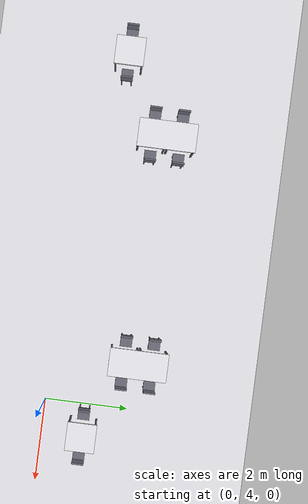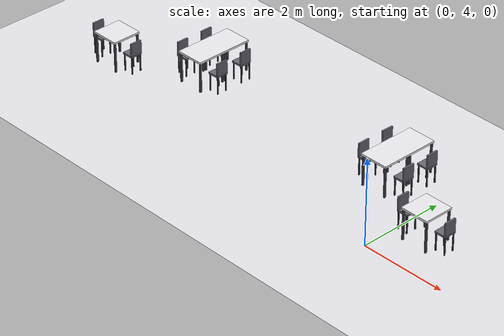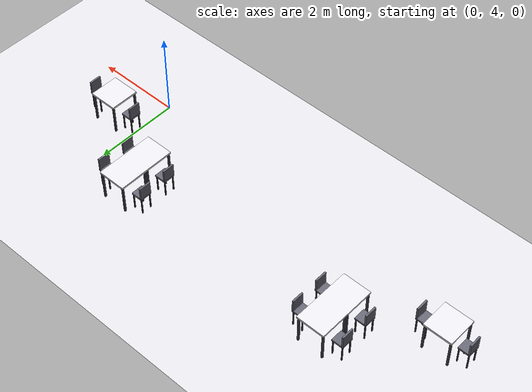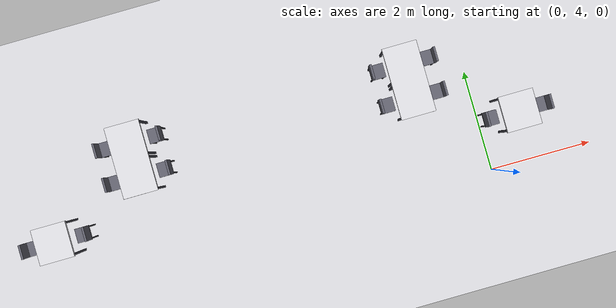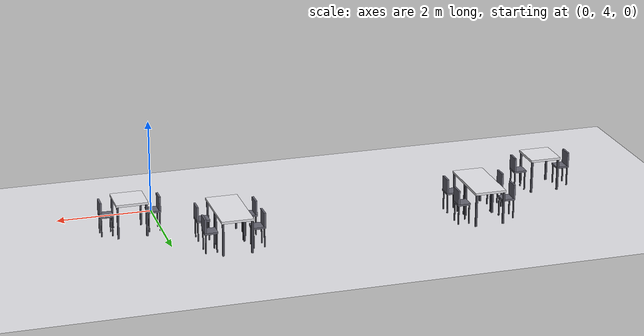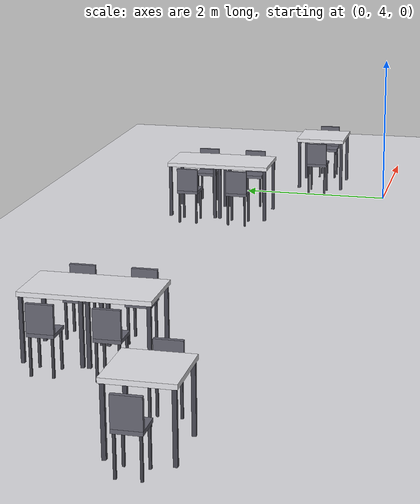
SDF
<sdf version="1.8">
 <world name="restaurant_blueprint_world">
  <model name="ground_plane">
   <static>true</static>
   <link name="link">
    <collision name="collision">
     <geometry><plane><normal>0 0 1</normal><size>120 120</size></plane></geometry>
    </collision>
    <visual name="visual">
     <geometry><plane><normal>0 0 1</normal><size>120 120</size></plane></geometry>
     <material>
      <ambient>0.88 0.88 0.90 1</ambient>
      <diffuse>0.88 0.88 0.90 1</diffuse>
      <specular>0.1 0.1 0.1 1</specular>
     </material>
    </visual>
   </link>
  </model>
  <model name="restaurant_boundary">
   <static>true</static>
   <link name="north_wall_dining">
    <visual name="single_table_nw_vis">
     <pose>-8.445 4.985 0.725 0.0000 0.0000 0.0000</pose>
     <geometry><box><size>0.67 0.69 0.05</size></box></geometry>
     <material><ambient>0.85 0.85 0.88 1</ambient><diffuse>0.90 0.90 0.92 1</diffuse></material>
    </visual>
    <visual name="single_table_nw_leg_1_vis">
     <pose>-8.145 5.295 0.350 0 0 0.0000</pose>
     <geometry><box><size>0.04 0.04 0.70</size></box></geometry>
     <material><ambient>0.22 0.22 0.25 1</ambient><diffuse>0.28 0.28 0.32 1</diffuse></material>
    </visual>
    <visual name="single_table_nw_leg_2_vis">
     <pose>-8.745 5.295 0.350 0 0 0.0000</pose>
     <geometry><box><size>0.04 0.04 0.70</size></box></geometry>
     <material><ambient>0.22 0.22 0.25 1</ambient><diffuse>0.28 0.28 0.32 1</diffuse></material>
    </visual>
    <visual name="single_table_nw_leg_3_vis">
     <pose>-8.145 4.675 0.350 0 0 0.0000</pose>
     <geometry><box><size>0.04 0.04 0.70</size></box></geometry>
     <material><ambient>0.22 0.22 0.25 1</ambient><diffuse>0.28 0.28 0.32 1</diffuse></material>
    </visual>
    <visual name="single_table_nw_leg_4_vis">
     <pose>-8.745 4.675 0.350 0 0 0.0000</pose>
     <geometry><box><size>0.04 0.04 0.70</size></box></geometry>
     <material><ambient>0.22 0.22 0.25 1</ambient><diffuse>0.28 0.28 0.32 1</diffuse></material>
    </visual>
    <collision name="single_table_nw_col">
     <pose>-8.445 4.985 0.725 0.0000 0.0000 0.0000</pose>
     <geometry><box><size>0.67 0.69 0.05</size></box></geometry>
    </collision>
    <collision name="single_table_nw_leg_1_col">
     <pose>-8.145 5.295 0.350 0 0 0.0000</pose>
     <geometry><box><size>0.04 0.04 0.70</size></box></geometry>
    </collision>
    <collision name="single_table_nw_leg_2_col">
     <pose>-8.745 5.295 0.350 0 0 0.0000</pose>
     <geometry><box><size>0.04 0.04 0.70</size></box></geometry>
    </collision>
    <collision name="single_table_nw_leg_3_col">
     <pose>-8.145 4.675 0.350 0 0 0.0000</pose>
     <geometry><box><size>0.04 0.04 0.70</size></box></geometry>
    </collision>
    <collision name="single_table_nw_leg_4_col">
     <pose>-8.745 4.675 0.350 0 0 0.0000</pose>
     <geometry><box><size>0.04 0.04 0.70</size></box></geometry>
    </collision>
    <visual name="single_chair_nw_w_seat_vis">
     <pose>-8.941 4.985 0.430 0.0000 0.0000 0.0000</pose>
     <geometry><box><size>0.28 0.28 0.04</size></box></geometry>
     <material><ambient>0.30 0.30 0.33 1</ambient><diffuse>0.40 0.40 0.45 1</diffuse></material>
    </visual>
    <visual name="single_chair_nw_w_back_vis">
     <pose>-9.061 4.985 0.600 0 0 0.0000</pose>
     <geometry><box><size>0.04 0.28 0.30</size></box></geometry>
     <material><ambient>0.30 0.30 0.33 1</ambient><diffuse>0.40 0.40 0.45 1</diffuse></material>
    </visual>
    <visual name="single_chair_nw_w_leg_1_vis">
     <pose>-8.826 5.100 0.205 0 0 0.0000</pose>
     <geometry><box><size>0.025 0.025 0.41</size></box></geometry>
     <material><ambient>0.20 0.20 0.22 1</ambient><diffuse>0.25 0.25 0.28 1</diffuse></material>
    </visual>
    <visual name="single_chair_nw_w_leg_2_vis">
     <pose>-9.056 5.100 0.205 0 0 0.0000</pose>
     <geometry><box><size>0.025 0.025 0.41</size></box></geometry>
     <material><ambient>0.20 0.20 0.22 1</ambient><diffuse>0.25 0.25 0.28 1</diffuse></material>
    </visual>
    <visual name="single_chair_nw_w_leg_3_vis">
     <pose>-8.826 4.870 0.205 0 0 0.0000</pose>
     <geometry><box><size>0.025 0.025 0.41</size></box></geometry>
     <material><ambient>0.20 0.20 0.22 1</ambient><diffuse>0.25 0.25 0.28 1</diffuse></material>
    </visual>
    <visual name="single_chair_nw_w_leg_4_vis">
     <pose>-9.056 4.870 0.205 0 0 0.0000</pose>
     <geometry><box><size>0.025 0.025 0.41</size></box></geometry>
     <material><ambient>0.20 0.20 0.22 1</ambient><diffuse>0.25 0.25 0.28 1</diffuse></material>
    </visual>
    <collision name="single_chair_nw_w_seat_col">
     <pose>-8.941 4.985 0.430 0.0000 0.0000 0.0000</pose>
     <geometry><box><size>0.28 0.28 0.04</size></box></geometry>
    </collision>
    <collision name="single_chair_nw_w_back_col">
     <pose>-9.061 4.985 0.600 0 0 0.0000</pose>
     <geometry><box><size>0.04 0.28 0.30</size></box></geometry>
    </collision>
    <collision name="single_chair_nw_w_leg_1_col">
     <pose>-8.826 5.100 0.205 0 0 0.0000</pose>
     <geometry><box><size>0.025 0.025 0.41</size></box></geometry>
    </collision>
    <collision name="single_chair_nw_w_leg_2_col">
     <pose>-9.056 5.100 0.205 0 0 0.0000</pose>
     <geometry><box><size>0.025 0.025 0.41</size></box></geometry>
    </collision>
    <collision name="single_chair_nw_w_leg_3_col">
     <pose>-8.826 4.870 0.205 0 0 0.0000</pose>
     <geometry><box><size>0.025 0.025 0.41</size></box></geometry>
    </collision>
    <collision name="single_chair_nw_w_leg_4_col">
     <pose>-9.056 4.870 0.205 0 0 0.0000</pose>
     <geometry><box><size>0.025 0.025 0.41</size></box></geometry>
    </collision>
    <visual name="single_chair_nw_e_seat_vis">
     <pose>-7.949 4.985 0.430 0.0000 0.0000 0.0000</pose>
     <geometry><box><size>0.28 0.28 0.04</size></box></geometry>
     <material><ambient>0.30 0.30 0.33 1</ambient><diffuse>0.40 0.40 0.45 1</diffuse></material>
    </visual>
    <visual name="single_chair_nw_e_back_vis">
     <pose>-7.829 4.985 0.600 0 0 0.0000</pose>
     <geometry><box><size>0.04 0.28 0.30</size></box></geometry>
     <material><ambient>0.30 0.30 0.33 1</ambient><diffuse>0.40 0.40 0.45 1</diffuse></material>
    </visual>
    <visual name="single_chair_nw_e_leg_1_vis">
     <pose>-7.834 5.100 0.205 0 0 0.0000</pose>
     <geometry><box><size>0.025 0.025 0.41</size></box></geometry>
     <material><ambient>0.20 0.20 0.22 1</ambient><diffuse>0.25 0.25 0.28 1</diffuse></material>
    </visual>
    <visual name="single_chair_nw_e_leg_2_vis">
     <pose>-8.064 5.100 0.205 0 0 0.0000</pose>
     <geometry><box><size>0.025 0.025 0.41</size></box></geometry>
     <material><ambient>0.20 0.20 0.22 1</ambient><diffuse>0.25 0.25 0.28 1</diffuse></material>
    </visual>
    <visual name="single_chair_nw_e_leg_3_vis">
     <pose>-7.834 4.870 0.205 0 0 0.0000</pose>
     <geometry><box><size>0.025 0.025 0.41</size></box></geometry>
     <material><ambient>0.20 0.20 0.22 1</ambient><diffuse>0.25 0.25 0.28 1</diffuse></material>
    </visual>
    <visual name="single_chair_nw_e_leg_4_vis">
     <pose>-8.064 4.870 0.205 0 0 0.0000</pose>
     <geometry><box><size>0.025 0.025 0.41</size></box></geometry>
     <material><ambient>0.20 0.20 0.22 1</ambient><diffuse>0.25 0.25 0.28 1</diffuse></material>
    </visual>
    <collision name="single_chair_nw_e_seat_col">
     <pose>-7.949 4.985 0.430 0.0000 0.0000 0.0000</pose>
     <geometry><box><size>0.28 0.28 0.04</size></box></geometry>
    </collision>
    <collision name="single_chair_nw_e_back_col">
     <pose>-7.829 4.985 0.600 0 0 0.0000</pose>
     <geometry><box><size>0.04 0.28 0.30</size></box></geometry>
    </collision>
    <collision name="single_chair_nw_e_leg_1_col">
     <pose>-7.834 5.100 0.205 0 0 0.0000</pose>
     <geometry><box><size>0.025 0.025 0.41</size></box></geometry>
    </collision>
    <collision name="single_chair_nw_e_leg_2_col">
     <pose>-8.064 5.100 0.205 0 0 0.0000</pose>
     <geometry><box><size>0.025 0.025 0.41</size></box></geometry>
    </collision>
    <collision name="single_chair_nw_e_leg_3_col">
     <pose>-7.834 4.870 0.205 0 0 0.0000</pose>
     <geometry><box><size>0.025 0.025 0.41</size></box></geometry>
    </collision>
    <collision name="single_chair_nw_e_leg_4_col">
     <pose>-8.064 4.870 0.205 0 0 0.0000</pose>
     <geometry><box><size>0.025 0.025 0.41</size></box></geometry>
    </collision>
    <visual name="table_nw_east_vis">
     <pose>-6.600 6.100 0.725 0.0000 0.0000 0.0000</pose>
     <geometry><box><size>0.67 1.38 0.05</size></box></geometry>
     <material><ambient>0.85 0.85 0.88 1</ambient><diffuse>0.90 0.90 0.92 1</diffuse></material>
    </visual>
    <visual name="table_nw_east_leg_1_vis">
     <pose>-6.300 6.755 0.350 0 0 0.0000</pose>
     <geometry><box><size>0.04 0.04 0.70</size></box></geometry>
     <material><ambient>0.22 0.22 0.25 1</ambient><diffuse>0.28 0.28 0.32 1</diffuse></material>
    </visual>
    <visual name="table_nw_east_leg_2_vis">
     <pose>-6.900 6.755 0.350 0 0 0.0000</pose>
     <geometry><box><size>0.04 0.04 0.70</size></box></geometry>
     <material><ambient>0.22 0.22 0.25 1</ambient><diffuse>0.28 0.28 0.32 1</diffuse></material>
    </visual>
    <visual name="table_nw_east_leg_3_vis">
     <pose>-6.300 6.135 0.350 0 0 0.0000</pose>
     <geometry><box><size>0.04 0.04 0.70</size></box></geometry>
     <material><ambient>0.22 0.22 0.25 1</ambient><diffuse>0.28 0.28 0.32 1</diffuse></material>
    </visual>
    <visual name="table_nw_east_leg_4_vis">
     <pose>-6.900 6.135 0.350 0 0 0.0000</pose>
     <geometry><box><size>0.04 0.04 0.70</size></box></geometry>
     <material><ambient>0.22 0.22 0.25 1</ambient><diffuse>0.28 0.28 0.32 1</diffuse></material>
    </visual>
    <visual name="table_nw_east_leg_5_vis">
     <pose>-6.300 6.065 0.350 0 0 0.0000</pose>
     <geometry><box><size>0.04 0.04 0.70</size></box></geometry>
     <material><ambient>0.22 0.22 0.25 1</ambient><diffuse>0.28 0.28 0.32 1</diffuse></material>
    </visual>
    <visual name="table_nw_east_leg_6_vis">
     <pose>-6.900 6.065 0.350 0 0 0.0000</pose>
     <geometry><box><size>0.04 0.04 0.70</size></box></geometry>
     <material><ambient>0.22 0.22 0.25 1</ambient><diffuse>0.28 0.28 0.32 1</diffuse></material>
    </visual>
    <visual name="table_nw_east_leg_7_vis">
     <pose>-6.300 5.445 0.350 0 0 0.0000</pose>
     <geometry><box><size>0.04 0.04 0.70</size></box></geometry>
     <material><ambient>0.22 0.22 0.25 1</ambient><diffuse>0.28 0.28 0.32 1</diffuse></material>
    </visual>
    <visual name="table_nw_east_leg_8_vis">
     <pose>-6.900 5.445 0.350 0 0 0.0000</pose>
     <geometry><box><size>0.04 0.04 0.70</size></box></geometry>
     <material><ambient>0.22 0.22 0.25 1</ambient><diffuse>0.28 0.28 0.32 1</diffuse></material>
    </visual>
    <collision name="table_nw_east_col">
     <pose>-6.600 6.100 0.725 0.0000 0.0000 0.0000</pose>
     <geometry><box><size>0.67 1.38 0.05</size></box></geometry>
    </collision>
    <collision name="table_nw_east_leg_1_col">
     <pose>-6.300 6.755 0.350 0 0 0.0000</pose>
     <geometry><box><size>0.04 0.04 0.70</size></box></geometry>
    </collision>
    <collision name="table_nw_east_leg_2_col">
     <pose>-6.900 6.755 0.350 0 0 0.0000</pose>
     <geometry><box><size>0.04 0.04 0.70</size></box></geometry>
    </collision>
    <collision name="table_nw_east_leg_3_col">
     <pose>-6.300 6.135 0.350 0 0 0.0000</pose>
     <geometry><box><size>0.04 0.04 0.70</size></box></geometry>
    </collision>
    <collision name="table_nw_east_leg_4_col">
     <pose>-6.900 6.135 0.350 0 0 0.0000</pose>
     <geometry><box><size>0.04 0.04 0.70</size></box></geometry>
    </collision>
    <collision name="table_nw_east_leg_5_col">
     <pose>-6.300 6.065 0.350 0 0 0.0000</pose>
     <geometry><box><size>0.04 0.04 0.70</size></box></geometry>
    </collision>
    <collision name="table_nw_east_leg_6_col">
     <pose>-6.900 6.065 0.350 0 0 0.0000</pose>
     <geometry><box><size>0.04 0.04 0.70</size></box></geometry>
    </collision>
    <collision name="table_nw_east_leg_7_col">
     <pose>-6.300 5.445 0.350 0 0 0.0000</pose>
     <geometry><box><size>0.04 0.04 0.70</size></box></geometry>
    </collision>
    <collision name="table_nw_east_leg_8_col">
     <pose>-6.900 5.445 0.350 0 0 0.0000</pose>
     <geometry><box><size>0.04 0.04 0.70</size></box></geometry>
    </collision>
    <visual name="chair_nw_east_w1_seat_vis">
     <pose>-7.096 6.435 0.430 0.0000 0.0000 0.0000</pose>
     <geometry><box><size>0.28 0.28 0.04</size></box></geometry>
     <material><ambient>0.30 0.30 0.33 1</ambient><diffuse>0.40 0.40 0.45 1</diffuse></material>
    </visual>
    <visual name="chair_nw_east_w1_back_vis">
     <pose>-7.216 6.435 0.600 0 0 0.0000</pose>
     <geometry><box><size>0.04 0.28 0.30</size></box></geometry>
     <material><ambient>0.30 0.30 0.33 1</ambient><diffuse>0.40 0.40 0.45 1</diffuse></material>
    </visual>
    <visual name="chair_nw_east_w1_leg_1_vis">
     <pose>-6.981 6.550 0.205 0 0 0.0000</pose>
     <geometry><box><size>0.025 0.025 0.41</size></box></geometry>
     <material><ambient>0.20 0.20 0.22 1</ambient><diffuse>0.25 0.25 0.28 1</diffuse></material>
    </visual>
    <visual name="chair_nw_east_w1_leg_2_vis">
     <pose>-7.211 6.550 0.205 0 0 0.0000</pose>
     <geometry><box><size>0.025 0.025 0.41</size></box></geometry>
     <material><ambient>0.20 0.20 0.22 1</ambient><diffuse>0.25 0.25 0.28 1</diffuse></material>
    </visual>
    <visual name="chair_nw_east_w1_leg_3_vis">
     <pose>-6.981 6.320 0.205 0 0 0.0000</pose>
     <geometry><box><size>0.025 0.025 0.41</size></box></geometry>
     <material><ambient>0.20 0.20 0.22 1</ambient><diffuse>0.25 0.25 0.28 1</diffuse></material>
    </visual>
    <visual name="chair_nw_east_w1_leg_4_vis">
     <pose>-7.211 6.320 0.205 0 0 0.0000</pose>
     <geometry><box><size>0.025 0.025 0.41</size></box></geometry>
     <material><ambient>0.20 0.20 0.22 1</ambient><diffuse>0.25 0.25 0.28 1</diffuse></material>
    </visual>
    <collision name="chair_nw_east_w1_seat_col">
     <pose>-7.096 6.435 0.430 0.0000 0.0000 0.0000</pose>
     <geometry><box><size>0.28 0.28 0.04</size></box></geometry>
    </collision>
    <collision name="chair_nw_east_w1_back_col">
     <pose>-7.216 6.435 0.600 0 0 0.0000</pose>
     <geometry><box><size>0.04 0.28 0.30</size></box></geometry>
    </collision>
    <collision name="chair_nw_east_w1_leg_1_col">
     <pose>-6.981 6.550 0.205 0 0 0.0000</pose>
     <geometry><box><size>0.025 0.025 0.41</size></box></geometry>
    </collision>
    <collision name="chair_nw_east_w1_leg_2_col">
     <pose>-7.211 6.550 0.205 0 0 0.0000</pose>
     <geometry><box><size>0.025 0.025 0.41</size></box></geometry>
    </collision>
    <collision name="chair_nw_east_w1_leg_3_col">
     <pose>-6.981 6.320 0.205 0 0 0.0000</pose>
     <geometry><box><size>0.025 0.025 0.41</size></box></geometry>
    </collision>
    <collision name="chair_nw_east_w1_leg_4_col">
     <pose>-7.211 6.320 0.205 0 0 0.0000</pose>
     <geometry><box><size>0.025 0.025 0.41</size></box></geometry>
    </collision>
    <visual name="chair_nw_east_w2_seat_vis">
     <pose>-7.096 5.765 0.430 0.0000 0.0000 0.0000</pose>
     <geometry><box><size>0.28 0.28 0.04</size></box></geometry>
     <material><ambient>0.30 0.30 0.33 1</ambient><diffuse>0.40 0.40 0.45 1</diffuse></material>
    </visual>
    <visual name="chair_nw_east_w2_back_vis">
     <pose>-7.216 5.765 0.600 0 0 0.0000</pose>
     <geometry><box><size>0.04 0.28 0.30</size></box></geometry>
     <material><ambient>0.30 0.30 0.33 1</ambient><diffuse>0.40 0.40 0.45 1</diffuse></material>
    </visual>
    <visual name="chair_nw_east_w2_leg_1_vis">
     <pose>-6.981 5.880 0.205 0 0 0.0000</pose>
     <geometry><box><size>0.025 0.025 0.41</size></box></geometry>
     <material><ambient>0.20 0.20 0.22 1</ambient><diffuse>0.25 0.25 0.28 1</diffuse></material>
    </visual>
    <visual name="chair_nw_east_w2_leg_2_vis">
     <pose>-7.211 5.880 0.205 0 0 0.0000</pose>
     <geometry><box><size>0.025 0.025 0.41</size></box></geometry>
     <material><ambient>0.20 0.20 0.22 1</ambient><diffuse>0.25 0.25 0.28 1</diffuse></material>
    </visual>
    <visual name="chair_nw_east_w2_leg_3_vis">
     <pose>-6.981 5.650 0.205 0 0 0.0000</pose>
     <geometry><box><size>0.025 0.025 0.41</size></box></geometry>
     <material><ambient>0.20 0.20 0.22 1</ambient><diffuse>0.25 0.25 0.28 1</diffuse></material>
    </visual>
    <visual name="chair_nw_east_w2_leg_4_vis">
     <pose>-7.211 5.650 0.205 0 0 0.0000</pose>
     <geometry><box><size>0.025 0.025 0.41</size></box></geometry>
     <material><ambient>0.20 0.20 0.22 1</ambient><diffuse>0.25 0.25 0.28 1</diffuse></material>
    </visual>
    <collision name="chair_nw_east_w2_seat_col">
     <pose>-7.096 5.765 0.430 0.0000 0.0000 0.0000</pose>
     <geometry><box><size>0.28 0.28 0.04</size></box></geometry>
    </collision>
    <collision name="chair_nw_east_w2_back_col">
     <pose>-7.216 5.765 0.600 0 0 0.0000</pose>
     <geometry><box><size>0.04 0.28 0.30</size></box></geometry>
    </collision>
    <collision name="chair_nw_east_w2_leg_1_col">
     <pose>-6.981 5.880 0.205 0 0 0.0000</pose>
     <geometry><box><size>0.025 0.025 0.41</size></box></geometry>
    </collision>
    <collision name="chair_nw_east_w2_leg_2_col">
     <pose>-7.211 5.880 0.205 0 0 0.0000</pose>
     <geometry><box><size>0.025 0.025 0.41</size></box></geometry>
    </collision>
    <collision name="chair_nw_east_w2_leg_3_col">
     <pose>-6.981 5.650 0.205 0 0 0.0000</pose>
     <geometry><box><size>0.025 0.025 0.41</size></box></geometry>
    </collision>
    <collision name="chair_nw_east_w2_leg_4_col">
     <pose>-7.211 5.650 0.205 0 0 0.0000</pose>
     <geometry><box><size>0.025 0.025 0.41</size></box></geometry>
    </collision>
    <visual name="chair_nw_east_e1_seat_vis">
     <pose>-6.104 6.435 0.430 0.0000 0.0000 0.0000</pose>
     <geometry><box><size>0.28 0.28 0.04</size></box></geometry>
     <material><ambient>0.30 0.30 0.33 1</ambient><diffuse>0.40 0.40 0.45 1</diffuse></material>
    </visual>
    <visual name="chair_nw_east_e1_back_vis">
     <pose>-5.984 6.435 0.600 0 0 0.0000</pose>
     <geometry><box><size>0.04 0.28 0.30</size></box></geometry>
     <material><ambient>0.30 0.30 0.33 1</ambient><diffuse>0.40 0.40 0.45 1</diffuse></material>
    </visual>
    <visual name="chair_nw_east_e1_leg_1_vis">
     <pose>-5.989 6.550 0.205 0 0 0.0000</pose>
     <geometry><box><size>0.025 0.025 0.41</size></box></geometry>
     <material><ambient>0.20 0.20 0.22 1</ambient><diffuse>0.25 0.25 0.28 1</diffuse></material>
    </visual>
    <visual name="chair_nw_east_e1_leg_2_vis">
     <pose>-6.219 6.550 0.205 0 0 0.0000</pose>
     <geometry><box><size>0.025 0.025 0.41</size></box></geometry>
     <material><ambient>0.20 0.20 0.22 1</ambient><diffuse>0.25 0.25 0.28 1</diffuse></material>
    </visual>
    <visual name="chair_nw_east_e1_leg_3_vis">
     <pose>-5.989 6.320 0.205 0 0 0.0000</pose>
     <geometry><box><size>0.025 0.025 0.41</size></box></geometry>
     <material><ambient>0.20 0.20 0.22 1</ambient><diffuse>0.25 0.25 0.28 1</diffuse></material>
    </visual>
    <visual name="chair_nw_east_e1_leg_4_vis">
     <pose>-6.219 6.320 0.205 0 0 0.0000</pose>
     <geometry><box><size>0.025 0.025 0.41</size></box></geometry>
     <material><ambient>0.20 0.20 0.22 1</ambient><diffuse>0.25 0.25 0.28 1</diffuse></material>
    </visual>
    <collision name="chair_nw_east_e1_seat_col">
     <pose>-6.104 6.435 0.430 0.0000 0.0000 0.0000</pose>
     <geometry><box><size>0.28 0.28 0.04</size></box></geometry>
    </collision>
    <collision name="chair_nw_east_e1_back_col">
     <pose>-5.984 6.435 0.600 0 0 0.0000</pose>
     <geometry><box><size>0.04 0.28 0.30</size></box></geometry>
    </collision>
    <collision name="chair_nw_east_e1_leg_1_col">
     <pose>-5.989 6.550 0.205 0 0 0.0000</pose>
     <geometry><box><size>0.025 0.025 0.41</size></box></geometry>
    </collision>
    <collision name="chair_nw_east_e1_leg_2_col">
     <pose>-6.219 6.550 0.205 0 0 0.0000</pose>
     <geometry><box><size>0.025 0.025 0.41</size></box></geometry>
    </collision>
    <collision name="chair_nw_east_e1_leg_3_col">
     <pose>-5.989 6.320 0.205 0 0 0.0000</pose>
     <geometry><box><size>0.025 0.025 0.41</size></box></geometry>
    </collision>
    <collision name="chair_nw_east_e1_leg_4_col">
     <pose>-6.219 6.320 0.205 0 0 0.0000</pose>
     <geometry><box><size>0.025 0.025 0.41</size></box></geometry>
    </collision>
    <visual name="chair_nw_east_e2_seat_vis">
     <pose>-6.104 5.765 0.430 0.0000 0.0000 0.0000</pose>
     <geometry><box><size>0.28 0.28 0.04</size></box></geometry>
     <material><ambient>0.30 0.30 0.33 1</ambient><diffuse>0.40 0.40 0.45 1</diffuse></material>
    </visual>
    <visual name="chair_nw_east_e2_back_vis">
     <pose>-5.984 5.765 0.600 0 0 0.0000</pose>
     <geometry><box><size>0.04 0.28 0.30</size></box></geometry>
     <material><ambient>0.30 0.30 0.33 1</ambient><diffuse>0.40 0.40 0.45 1</diffuse></material>
    </visual>
    <visual name="chair_nw_east_e2_leg_1_vis">
     <pose>-5.989 5.880 0.205 0 0 0.0000</pose>
     <geometry><box><size>0.025 0.025 0.41</size></box></geometry>
     <material><ambient>0.20 0.20 0.22 1</ambient><diffuse>0.25 0.25 0.28 1</diffuse></material>
    </visual>
    <visual name="chair_nw_east_e2_leg_2_vis">
     <pose>-6.219 5.880 0.205 0 0 0.0000</pose>
     <geometry><box><size>0.025 0.025 0.41</size></box></geometry>
     <material><ambient>0.20 0.20 0.22 1</ambient><diffuse>0.25 0.25 0.28 1</diffuse></material>
    </visual>
    <visual name="chair_nw_east_e2_leg_3_vis">
     <pose>-5.989 5.650 0.205 0 0 0.0000</pose>
     <geometry><box><size>0.025 0.025 0.41</size></box></geometry>
     <material><ambient>0.20 0.20 0.22 1</ambient><diffuse>0.25 0.25 0.28 1</diffuse></material>
    </visual>
    <visual name="chair_nw_east_e2_leg_4_vis">
     <pose>-6.219 5.650 0.205 0 0 0.0000</pose>
     <geometry><box><size>0.025 0.025 0.41</size></box></geometry>
     <material><ambient>0.20 0.20 0.22 1</ambient><diffuse>0.25 0.25 0.28 1</diffuse></material>
    </visual>
    <collision name="chair_nw_east_e2_seat_col">
     <pose>-6.104 5.765 0.430 0.0000 0.0000 0.0000</pose>
     <geometry><box><size>0.28 0.28 0.04</size></box></geometry>
    </collision>
    <collision name="chair_nw_east_e2_back_col">
     <pose>-5.984 5.765 0.600 0 0 0.0000</pose>
     <geometry><box><size>0.04 0.28 0.30</size></box></geometry>
    </collision>
    <collision name="chair_nw_east_e2_leg_1_col">
     <pose>-5.989 5.880 0.205 0 0 0.0000</pose>
     <geometry><box><size>0.025 0.025 0.41</size></box></geometry>
    </collision>
    <collision name="chair_nw_east_e2_leg_2_col">
     <pose>-6.219 5.880 0.205 0 0 0.0000</pose>
     <geometry><box><size>0.025 0.025 0.41</size></box></geometry>
    </collision>
    <collision name="chair_nw_east_e2_leg_3_col">
     <pose>-5.989 5.650 0.205 0 0 0.0000</pose>
     <geometry><box><size>0.025 0.025 0.41</size></box></geometry>
    </collision>
    <collision name="chair_nw_east_e2_leg_4_col">
     <pose>-6.219 5.650 0.205 0 0 0.0000</pose>
     <geometry><box><size>0.025 0.025 0.41</size></box></geometry>
    </collision>
    <visual name="table_ne_west_vis">
     <pose>-1.195 6.100 0.725 0.0000 0.0000 0.0000</pose>
     <geometry><box><size>0.67 1.38 0.05</size></box></geometry>
     <material><ambient>0.85 0.85 0.88 1</ambient><diffuse>0.90 0.90 0.92 1</diffuse></material>
    </visual>
    <visual name="table_ne_west_leg_1_vis">
     <pose>-0.895 6.755 0.350 0 0 0.0000</pose>
     <geometry><box><size>0.04 0.04 0.70</size></box></geometry>
     <material><ambient>0.22 0.22 0.25 1</ambient><diffuse>0.28 0.28 0.32 1</diffuse></material>
    </visual>
    <visual name="table_ne_west_leg_2_vis">
     <pose>-1.495 6.755 0.350 0 0 0.0000</pose>
     <geometry><box><size>0.04 0.04 0.70</size></box></geometry>
     <material><ambient>0.22 0.22 0.25 1</ambient><diffuse>0.28 0.28 0.32 1</diffuse></material>
    </visual>
    <visual name="table_ne_west_leg_3_vis">
     <pose>-0.895 6.135 0.350 0 0 0.0000</pose>
     <geometry><box><size>0.04 0.04 0.70</size></box></geometry>
     <material><ambient>0.22 0.22 0.25 1</ambient><diffuse>0.28 0.28 0.32 1</diffuse></material>
    </visual>
    <visual name="table_ne_west_leg_4_vis">
     <pose>-1.495 6.135 0.350 0 0 0.0000</pose>
     <geometry><box><size>0.04 0.04 0.70</size></box></geometry>
     <material><ambient>0.22 0.22 0.25 1</ambient><diffuse>0.28 0.28 0.32 1</diffuse></material>
    </visual>
    <visual name="table_ne_west_leg_5_vis">
     <pose>-0.895 6.065 0.350 0 0 0.0000</pose>
     <geometry><box><size>0.04 0.04 0.70</size></box></geometry>
     <material><ambient>0.22 0.22 0.25 1</ambient><diffuse>0.28 0.28 0.32 1</diffuse></material>
    </visual>
    <visual name="table_ne_west_leg_6_vis">
     <pose>-1.495 6.065 0.350 0 0 0.0000</pose>
     <geometry><box><size>0.04 0.04 0.70</size></box></geometry>
     <material><ambient>0.22 0.22 0.25 1</ambient><diffuse>0.28 0.28 0.32 1</diffuse></material>
    </visual>
    <visual name="table_ne_west_leg_7_vis">
     <pose>-0.895 5.445 0.350 0 0 0.0000</pose>
     <geometry><box><size>0.04 0.04 0.70</size></box></geometry>
     <material><ambient>0.22 0.22 0.25 1</ambient><diffuse>0.28 0.28 0.32 1</diffuse></material>
    </visual>
    <visual name="table_ne_west_leg_8_vis">
     <pose>-1.495 5.445 0.350 0 0 0.0000</pose>
     <geometry><box><size>0.04 0.04 0.70</size></box></geometry>
     <material><ambient>0.22 0.22 0.25 1</ambient><diffuse>0.28 0.28 0.32 1</diffuse></material>
    </visual>
    <collision name="table_ne_west_col">
     <pose>-1.195 6.100 0.725 0.0000 0.0000 0.0000</pose>
     <geometry><box><size>0.67 1.38 0.05</size></box></geometry>
    </collision>
    <collision name="table_ne_west_leg_1_col">
     <pose>-0.895 6.755 0.350 0 0 0.0000</pose>
     <geometry><box><size>0.04 0.04 0.70</size></box></geometry>
    </collision>
    <collision name="table_ne_west_leg_2_col">
     <pose>-1.495 6.755 0.350 0 0 0.0000</pose>
     <geometry><box><size>0.04 0.04 0.70</size></box></geometry>
    </collision>
    <collision name="table_ne_west_leg_3_col">
     <pose>-0.895 6.135 0.350 0 0 0.0000</pose>
     <geometry><box><size>0.04 0.04 0.70</size></box></geometry>
    </collision>
    <collision name="table_ne_west_leg_4_col">
     <pose>-1.495 6.135 0.350 0 0 0.0000</pose>
     <geometry><box><size>0.04 0.04 0.70</size></box></geometry>
    </collision>
    <collision name="table_ne_west_leg_5_col">
     <pose>-0.895 6.065 0.350 0 0 0.0000</pose>
     <geometry><box><size>0.04 0.04 0.70</size></box></geometry>
    </collision>
    <collision name="table_ne_west_leg_6_col">
     <pose>-1.495 6.065 0.350 0 0 0.0000</pose>
     <geometry><box><size>0.04 0.04 0.70</size></box></geometry>
    </collision>
    <collision name="table_ne_west_leg_7_col">
     <pose>-0.895 5.445 0.350 0 0 0.0000</pose>
     <geometry><box><size>0.04 0.04 0.70</size></box></geometry>
    </collision>
    <collision name="table_ne_west_leg_8_col">
     <pose>-1.495 5.445 0.350 0 0 0.0000</pose>
     <geometry><box><size>0.04 0.04 0.70</size></box></geometry>
    </collision>
    <visual name="chair_ne_west_w1_seat_vis">
     <pose>-1.691 6.435 0.430 0.0000 0.0000 0.0000</pose>
     <geometry><box><size>0.28 0.28 0.04</size></box></geometry>
     <material><ambient>0.30 0.30 0.33 1</ambient><diffuse>0.40 0.40 0.45 1</diffuse></material>
    </visual>
    <visual name="chair_ne_west_w1_back_vis">
     <pose>-1.811 6.435 0.600 0 0 0.0000</pose>
     <geometry><box><size>0.04 0.28 0.30</size></box></geometry>
     <material><ambient>0.30 0.30 0.33 1</ambient><diffuse>0.40 0.40 0.45 1</diffuse></material>
    </visual>
    <visual name="chair_ne_west_w1_leg_1_vis">
     <pose>-1.576 6.550 0.205 0 0 0.0000</pose>
     <geometry><box><size>0.025 0.025 0.41</size></box></geometry>
     <material><ambient>0.20 0.20 0.22 1</ambient><diffuse>0.25 0.25 0.28 1</diffuse></material>
    </visual>
    <visual name="chair_ne_west_w1_leg_2_vis">
     <pose>-1.806 6.550 0.205 0 0 0.0000</pose>
     <geometry><box><size>0.025 0.025 0.41</size></box></geometry>
     <material><ambient>0.20 0.20 0.22 1</ambient><diffuse>0.25 0.25 0.28 1</diffuse></material>
    </visual>
    <visual name="chair_ne_west_w1_leg_3_vis">
     <pose>-1.576 6.320 0.205 0 0 0.0000</pose>
     <geometry><box><size>0.025 0.025 0.41</size></box></geometry>
     <material><ambient>0.20 0.20 0.22 1</ambient><diffuse>0.25 0.25 0.28 1</diffuse></material>
    </visual>
    <visual name="chair_ne_west_w1_leg_4_vis">
     <pose>-1.806 6.320 0.205 0 0 0.0000</pose>
     <geometry><box><size>0.025 0.025 0.41</size></box></geometry>
     <material><ambient>0.20 0.20 0.22 1</ambient><diffuse>0.25 0.25 0.28 1</diffuse></material>
    </visual>
    <collision name="chair_ne_west_w1_seat_col">
     <pose>-1.691 6.435 0.430 0.0000 0.0000 0.0000</pose>
     <geometry><box><size>0.28 0.28 0.04</size></box></geometry>
    </collision>
    <collision name="chair_ne_west_w1_back_col">
     <pose>-1.811 6.435 0.600 0 0 0.0000</pose>
     <geometry><box><size>0.04 0.28 0.30</size></box></geometry>
    </collision>
    <collision name="chair_ne_west_w1_leg_1_col">
     <pose>-1.576 6.550 0.205 0 0 0.0000</pose>
     <geometry><box><size>0.025 0.025 0.41</size></box></geometry>
    </collision>
    <collision name="chair_ne_west_w1_leg_2_col">
     <pose>-1.806 6.550 0.205 0 0 0.0000</pose>
     <geometry><box><size>0.025 0.025 0.41</size></box></geometry>
    </collision>
    <collision name="chair_ne_west_w1_leg_3_col">
     <pose>-1.576 6.320 0.205 0 0 0.0000</pose>
     <geometry><box><size>0.025 0.025 0.41</size></box></geometry>
    </collision>
    <collision name="chair_ne_west_w1_leg_4_col">
     <pose>-1.806 6.320 0.205 0 0 0.0000</pose>
     <geometry><box><size>0.025 0.025 0.41</size></box></geometry>
    </collision>
    <visual name="chair_ne_west_w2_seat_vis">
     <pose>-1.691 5.765 0.430 0.0000 0.0000 0.0000</pose>
     <geometry><box><size>0.28 0.28 0.04</size></box></geometry>
     <material><ambient>0.30 0.30 0.33 1</ambient><diffuse>0.40 0.40 0.45 1</diffuse></material>
    </visual>
    <visual name="chair_ne_west_w2_back_vis">
     <pose>-1.811 5.765 0.600 0 0 0.0000</pose>
     <geometry><box><size>0.04 0.28 0.30</size></box></geometry>
     <material><ambient>0.30 0.30 0.33 1</ambient><diffuse>0.40 0.40 0.45 1</diffuse></material>
    </visual>
    <visual name="chair_ne_west_w2_leg_1_vis">
     <pose>-1.576 5.880 0.205 0 0 0.0000</pose>
     <geometry><box><size>0.025 0.025 0.41</size></box></geometry>
     <material><ambient>0.20 0.20 0.22 1</ambient><diffuse>0.25 0.25 0.28 1</diffuse></material>
    </visual>
    <visual name="chair_ne_west_w2_leg_2_vis">
     <pose>-1.806 5.880 0.205 0 0 0.0000</pose>
     <geometry><box><size>0.025 0.025 0.41</size></box></geometry>
     <material><ambient>0.20 0.20 0.22 1</ambient><diffuse>0.25 0.25 0.28 1</diffuse></material>
    </visual>
    <visual name="chair_ne_west_w2_leg_3_vis">
     <pose>-1.576 5.650 0.205 0 0 0.0000</pose>
     <geometry><box><size>0.025 0.025 0.41</size></box></geometry>
     <material><ambient>0.20 0.20 0.22 1</ambient><diffuse>0.25 0.25 0.28 1</diffuse></material>
    </visual>
    <visual name="chair_ne_west_w2_leg_4_vis">
     <pose>-1.806 5.650 0.205 0 0 0.0000</pose>
     <geometry><box><size>0.025 0.025 0.41</size></box></geometry>
     <material><ambient>0.20 0.20 0.22 1</ambient><diffuse>0.25 0.25 0.28 1</diffuse></material>
    </visual>
    <collision name="chair_ne_west_w2_seat_col">
     <pose>-1.691 5.765 0.430 0.0000 0.0000 0.0000</pose>
     <geometry><box><size>0.28 0.28 0.04</size></box></geometry>
    </collision>
    <collision name="chair_ne_west_w2_back_col">
     <pose>-1.811 5.765 0.600 0 0 0.0000</pose>
     <geometry><box><size>0.04 0.28 0.30</size></box></geometry>
    </collision>
    <collision name="chair_ne_west_w2_leg_1_col">
     <pose>-1.576 5.880 0.205 0 0 0.0000</pose>
     <geometry><box><size>0.025 0.025 0.41</size></box></geometry>
    </collision>
    <collision name="chair_ne_west_w2_leg_2_col">
     <pose>-1.806 5.880 0.205 0 0 0.0000</pose>
     <geometry><box><size>0.025 0.025 0.41</size></box></geometry>
    </collision>
    <collision name="chair_ne_west_w2_leg_3_col">
     <pose>-1.576 5.650 0.205 0 0 0.0000</pose>
     <geometry><box><size>0.025 0.025 0.41</size></box></geometry>
    </collision>
    <collision name="chair_ne_west_w2_leg_4_col">
     <pose>-1.806 5.650 0.205 0 0 0.0000</pose>
     <geometry><box><size>0.025 0.025 0.41</size></box></geometry>
    </collision>
    <visual name="chair_ne_west_e1_seat_vis">
     <pose>-0.699 6.435 0.430 0.0000 0.0000 0.0000</pose>
     <geometry><box><size>0.28 0.28 0.04</size></box></geometry>
     <material><ambient>0.30 0.30 0.33 1</ambient><diffuse>0.40 0.40 0.45 1</diffuse></material>
    </visual>
    <visual name="chair_ne_west_e1_back_vis">
     <pose>-0.579 6.435 0.600 0 0 0.0000</pose>
     <geometry><box><size>0.04 0.28 0.30</size></box></geometry>
     <material><ambient>0.30 0.30 0.33 1</ambient><diffuse>0.40 0.40 0.45 1</diffuse></material>
    </visual>
    <visual name="chair_ne_west_e1_leg_1_vis">
     <pose>-0.584 6.550 0.205 0 0 0.0000</pose>
     <geometry><box><size>0.025 0.025 0.41</size></box></geometry>
     <material><ambient>0.20 0.20 0.22 1</ambient><diffuse>0.25 0.25 0.28 1</diffuse></material>
    </visual>
    <visual name="chair_ne_west_e1_leg_2_vis">
     <pose>-0.814 6.550 0.205 0 0 0.0000</pose>
     <geometry><box><size>0.025 0.025 0.41</size></box></geometry>
     <material><ambient>0.20 0.20 0.22 1</ambient><diffuse>0.25 0.25 0.28 1</diffuse></material>
    </visual>
    <visual name="chair_ne_west_e1_leg_3_vis">
     <pose>-0.584 6.320 0.205 0 0 0.0000</pose>
     <geometry><box><size>0.025 0.025 0.41</size></box></geometry>
     <material><ambient>0.20 0.20 0.22 1</ambient><diffuse>0.25 0.25 0.28 1</diffuse></material>
    </visual>
    <visual name="chair_ne_west_e1_leg_4_vis">
     <pose>-0.814 6.320 0.205 0 0 0.0000</pose>
     <geometry><box><size>0.025 0.025 0.41</size></box></geometry>
     <material><ambient>0.20 0.20 0.22 1</ambient><diffuse>0.25 0.25 0.28 1</diffuse></material>
    </visual>
    <collision name="chair_ne_west_e1_seat_col">
     <pose>-0.699 6.435 0.430 0.0000 0.0000 0.0000</pose>
     <geometry><box><size>0.28 0.28 0.04</size></box></geometry>
    </collision>
    <collision name="chair_ne_west_e1_back_col">
     <pose>-0.579 6.435 0.600 0 0 0.0000</pose>
     <geometry><box><size>0.04 0.28 0.30</size></box></geometry>
    </collision>
    <collision name="chair_ne_west_e1_leg_1_col">
     <pose>-0.584 6.550 0.205 0 0 0.0000</pose>
     <geometry><box><size>0.025 0.025 0.41</size></box></geometry>
    </collision>
    <collision name="chair_ne_west_e1_leg_2_col">
     <pose>-0.814 6.550 0.205 0 0 0.0000</pose>
     <geometry><box><size>0.025 0.025 0.41</size></box></geometry>
    </collision>
    <collision name="chair_ne_west_e1_leg_3_col">
     <pose>-0.584 6.320 0.205 0 0 0.0000</pose>
     <geometry><box><size>0.025 0.025 0.41</size></box></geometry>
    </collision>
    <collision name="chair_ne_west_e1_leg_4_col">
     <pose>-0.814 6.320 0.205 0 0 0.0000</pose>
     <geometry><box><size>0.025 0.025 0.41</size></box></geometry>
    </collision>
    <visual name="chair_ne_west_e2_seat_vis">
     <pose>-0.699 5.765 0.430 0.0000 0.0000 0.0000</pose>
     <geometry><box><size>0.28 0.28 0.04</size></box></geometry>
     <material><ambient>0.30 0.30 0.33 1</ambient><diffuse>0.40 0.40 0.45 1</diffuse></material>
    </visual>
    <visual name="chair_ne_west_e2_back_vis">
     <pose>-0.579 5.765 0.600 0 0 0.0000</pose>
     <geometry><box><size>0.04 0.28 0.30</size></box></geometry>
     <material><ambient>0.30 0.30 0.33 1</ambient><diffuse>0.40 0.40 0.45 1</diffuse></material>
    </visual>
    <visual name="chair_ne_west_e2_leg_1_vis">
     <pose>-0.584 5.880 0.205 0 0 0.0000</pose>
     <geometry><box><size>0.025 0.025 0.41</size></box></geometry>
     <material><ambient>0.20 0.20 0.22 1</ambient><diffuse>0.25 0.25 0.28 1</diffuse></material>
    </visual>
    <visual name="chair_ne_west_e2_leg_2_vis">
     <pose>-0.814 5.880 0.205 0 0 0.0000</pose>
     <geometry><box><size>0.025 0.025 0.41</size></box></geometry>
     <material><ambient>0.20 0.20 0.22 1</ambient><diffuse>0.25 0.25 0.28 1</diffuse></material>
    </visual>
    <visual name="chair_ne_west_e2_leg_3_vis">
     <pose>-0.584 5.650 0.205 0 0 0.0000</pose>
     <geometry><box><size>0.025 0.025 0.41</size></box></geometry>
     <material><ambient>0.20 0.20 0.22 1</ambient><diffuse>0.25 0.25 0.28 1</diffuse></material>
    </visual>
    <visual name="chair_ne_west_e2_leg_4_vis">
     <pose>-0.814 5.650 0.205 0 0 0.0000</pose>
     <geometry><box><size>0.025 0.025 0.41</size></box></geometry>
     <material><ambient>0.20 0.20 0.22 1</ambient><diffuse>0.25 0.25 0.28 1</diffuse></material>
    </visual>
    <collision name="chair_ne_west_e2_seat_col">
     <pose>-0.699 5.765 0.430 0.0000 0.0000 0.0000</pose>
     <geometry><box><size>0.28 0.28 0.04</size></box></geometry>
    </collision>
    <collision name="chair_ne_west_e2_back_col">
     <pose>-0.579 5.765 0.600 0 0 0.0000</pose>
     <geometry><box><size>0.04 0.28 0.30</size></box></geometry>
    </collision>
    <collision name="chair_ne_west_e2_leg_1_col">
     <pose>-0.584 5.880 0.205 0 0 0.0000</pose>
     <geometry><box><size>0.025 0.025 0.41</size></box></geometry>
    </collision>
    <collision name="chair_ne_west_e2_leg_2_col">
     <pose>-0.814 5.880 0.205 0 0 0.0000</pose>
     <geometry><box><size>0.025 0.025 0.41</size></box></geometry>
    </collision>
    <collision name="chair_ne_west_e2_leg_3_col">
     <pose>-0.584 5.650 0.205 0 0 0.0000</pose>
     <geometry><box><size>0.025 0.025 0.41</size></box></geometry>
    </collision>
    <collision name="chair_ne_west_e2_leg_4_col">
     <pose>-0.814 5.650 0.205 0 0 0.0000</pose>
     <geometry><box><size>0.025 0.025 0.41</size></box></geometry>
    </collision>
    <visual name="single_table_ne_vis">
     <pose>0.650 4.985 0.725 0.0000 0.0000 0.0000</pose>
     <geometry><box><size>0.67 0.69 0.05</size></box></geometry>
     <material><ambient>0.85 0.85 0.88 1</ambient><diffuse>0.90 0.90 0.92 1</diffuse></material>
    </visual>
    <visual name="single_table_ne_leg_1_vis">
     <pose>0.950 5.295 0.350 0 0 0.0000</pose>
     <geometry><box><size>0.04 0.04 0.70</size></box></geometry>
     <material><ambient>0.22 0.22 0.25 1</ambient><diffuse>0.28 0.28 0.32 1</diffuse></material>
    </visual>
    <visual name="single_table_ne_leg_2_vis">
     <pose>0.350 5.295 0.350 0 0 0.0000</pose>
     <geometry><box><size>0.04 0.04 0.70</size></box></geometry>
     <material><ambient>0.22 0.22 0.25 1</ambient><diffuse>0.28 0.28 0.32 1</diffuse></material>
    </visual>
    <visual name="single_table_ne_leg_3_vis">
     <pose>0.950 4.675 0.350 0 0 0.0000</pose>
     <geometry><box><size>0.04 0.04 0.70</size></box></geometry>
     <material><ambient>0.22 0.22 0.25 1</ambient><diffuse>0.28 0.28 0.32 1</diffuse></material>
    </visual>
    <visual name="single_table_ne_leg_4_vis">
     <pose>0.350 4.675 0.350 0 0 0.0000</pose>
     <geometry><box><size>0.04 0.04 0.70</size></box></geometry>
     <material><ambient>0.22 0.22 0.25 1</ambient><diffuse>0.28 0.28 0.32 1</diffuse></material>
    </visual>
    <collision name="single_table_ne_col">
     <pose>0.650 4.985 0.725 0.0000 0.0000 0.0000</pose>
     <geometry><box><size>0.67 0.69 0.05</size></box></geometry>
    </collision>
    <collision name="single_table_ne_leg_1_col">
     <pose>0.950 5.295 0.350 0 0 0.0000</pose>
     <geometry><box><size>0.04 0.04 0.70</size></box></geometry>
    </collision>
    <collision name="single_table_ne_leg_2_col">
     <pose>0.350 5.295 0.350 0 0 0.0000</pose>
     <geometry><box><size>0.04 0.04 0.70</size></box></geometry>
    </collision>
    <collision name="single_table_ne_leg_3_col">
     <pose>0.950 4.675 0.350 0 0 0.0000</pose>
     <geometry><box><size>0.04 0.04 0.70</size></box></geometry>
    </collision>
    <collision name="single_table_ne_leg_4_col">
     <pose>0.350 4.675 0.350 0 0 0.0000</pose>
     <geometry><box><size>0.04 0.04 0.70</size></box></geometry>
    </collision>
    <visual name="single_chair_ne_w_seat_vis">
     <pose>0.154 4.985 0.430 0.0000 0.0000 0.0000</pose>
     <geometry><box><size>0.28 0.28 0.04</size></box></geometry>
     <material><ambient>0.30 0.30 0.33 1</ambient><diffuse>0.40 0.40 0.45 1</diffuse></material>
    </visual>
    <visual name="single_chair_ne_w_back_vis">
     <pose>0.034 4.985 0.600 0 0 0.0000</pose>
     <geometry><box><size>0.04 0.28 0.30</size></box></geometry>
     <material><ambient>0.30 0.30 0.33 1</ambient><diffuse>0.40 0.40 0.45 1</diffuse></material>
    </visual>
    <visual name="single_chair_ne_w_leg_1_vis">
     <pose>0.269 5.100 0.205 0 0 0.0000</pose>
     <geometry><box><size>0.025 0.025 0.41</size></box></geometry>
     <material><ambient>0.20 0.20 0.22 1</ambient><diffuse>0.25 0.25 0.28 1</diffuse></material>
    </visual>
    <visual name="single_chair_ne_w_leg_2_vis">
     <pose>0.039 5.100 0.205 0 0 0.0000</pose>
     <geometry><box><size>0.025 0.025 0.41</size></box></geometry>
     <material><ambient>0.20 0.20 0.22 1</ambient><diffuse>0.25 0.25 0.28 1</diffuse></material>
    </visual>
    <visual name="single_chair_ne_w_leg_3_vis">
     <pose>0.269 4.870 0.205 0 0 0.0000</pose>
     <geometry><box><size>0.025 0.025 0.41</size></box></geometry>
     <material><ambient>0.20 0.20 0.22 1</ambient><diffuse>0.25 0.25 0.28 1</diffuse></material>
    </visual>
    <visual name="single_chair_ne_w_leg_4_vis">
     <pose>0.039 4.870 0.205 0 0 0.0000</pose>
     <geometry><box><size>0.025 0.025 0.41</size></box></geometry>
     <material><ambient>0.20 0.20 0.22 1</ambient><diffuse>0.25 0.25 0.28 1</diffuse></material>
    </visual>
    <collision name="single_chair_ne_w_seat_col">
     <pose>0.154 4.985 0.430 0.0000 0.0000 0.0000</pose>
     <geometry><box><size>0.28 0.28 0.04</size></box></geometry>
    </collision>
    <collision name="single_chair_ne_w_back_col">
     <pose>0.034 4.985 0.600 0 0 0.0000</pose>
     <geometry><box><size>0.04 0.28 0.30</size></box></geometry>
    </collision>
    <collision name="single_chair_ne_w_leg_1_col">
     <pose>0.269 5.100 0.205 0 0 0.0000</pose>
     <geometry><box><size>0.025 0.025 0.41</size></box></geometry>
    </collision>
    <collision name="single_chair_ne_w_leg_2_col">
     <pose>0.039 5.100 0.205 0 0 0.0000</pose>
     <geometry><box><size>0.025 0.025 0.41</size></box></geometry>
    </collision>
    <collision name="single_chair_ne_w_leg_3_col">
     <pose>0.269 4.870 0.205 0 0 0.0000</pose>
     <geometry><box><size>0.025 0.025 0.41</size></box></geometry>
    </collision>
    <collision name="single_chair_ne_w_leg_4_col">
     <pose>0.039 4.870 0.205 0 0 0.0000</pose>
     <geometry><box><size>0.025 0.025 0.41</size></box></geometry>
    </collision>
    <visual name="single_chair_ne_e_seat_vis">
     <pose>1.146 4.985 0.430 0.0000 0.0000 0.0000</pose>
     <geometry><box><size>0.28 0.28 0.04</size></box></geometry>
     <material><ambient>0.30 0.30 0.33 1</ambient><diffuse>0.40 0.40 0.45 1</diffuse></material>
    </visual>
    <visual name="single_chair_ne_e_back_vis">
     <pose>1.266 4.985 0.600 0 0 0.0000</pose>
     <geometry><box><size>0.04 0.28 0.30</size></box></geometry>
     <material><ambient>0.30 0.30 0.33 1</ambient><diffuse>0.40 0.40 0.45 1</diffuse></material>
    </visual>
    <visual name="single_chair_ne_e_leg_1_vis">
     <pose>1.261 5.100 0.205 0 0 0.0000</pose>
     <geometry><box><size>0.025 0.025 0.41</size></box></geometry>
     <material><ambient>0.20 0.20 0.22 1</ambient><diffuse>0.25 0.25 0.28 1</diffuse></material>
    </visual>
    <visual name="single_chair_ne_e_leg_2_vis">
     <pose>1.031 5.100 0.205 0 0 0.0000</pose>
     <geometry><box><size>0.025 0.025 0.41</size></box></geometry>
     <material><ambient>0.20 0.20 0.22 1</ambient><diffuse>0.25 0.25 0.28 1</diffuse></material>
    </visual>
    <visual name="single_chair_ne_e_leg_3_vis">
     <pose>1.261 4.870 0.205 0 0 0.0000</pose>
     <geometry><box><size>0.025 0.025 0.41</size></box></geometry>
     <material><ambient>0.20 0.20 0.22 1</ambient><diffuse>0.25 0.25 0.28 1</diffuse></material>
    </visual>
    <visual name="single_chair_ne_e_leg_4_vis">
     <pose>1.031 4.870 0.205 0 0 0.0000</pose>
     <geometry><box><size>0.025 0.025 0.41</size></box></geometry>
     <material><ambient>0.20 0.20 0.22 1</ambient><diffuse>0.25 0.25 0.28 1</diffuse></material>
    </visual>
    <collision name="single_chair_ne_e_seat_col">
     <pose>1.146 4.985 0.430 0.0000 0.0000 0.0000</pose>
     <geometry><box><size>0.28 0.28 0.04</size></box></geometry>
    </collision>
    <collision name="single_chair_ne_e_back_col">
     <pose>1.266 4.985 0.600 0 0 0.0000</pose>
     <geometry><box><size>0.04 0.28 0.30</size></box></geometry>
    </collision>
    <collision name="single_chair_ne_e_leg_1_col">
     <pose>1.261 5.100 0.205 0 0 0.0000</pose>
     <geometry><box><size>0.025 0.025 0.41</size></box></geometry>
    </collision>
    <collision name="single_chair_ne_e_leg_2_col">
     <pose>1.031 5.100 0.205 0 0 0.0000</pose>
     <geometry><box><size>0.025 0.025 0.41</size></box></geometry>
    </collision>
    <collision name="single_chair_ne_e_leg_3_col">
     <pose>1.261 4.870 0.205 0 0 0.0000</pose>
     <geometry><box><size>0.025 0.025 0.41</size></box></geometry>
    </collision>
    <collision name="single_chair_ne_e_leg_4_col">
     <pose>1.031 4.870 0.205 0 0 0.0000</pose>
     <geometry><box><size>0.025 0.025 0.41</size></box></geometry>
    </collision>
   </link>
  </model>
 </world>
</sdf>
